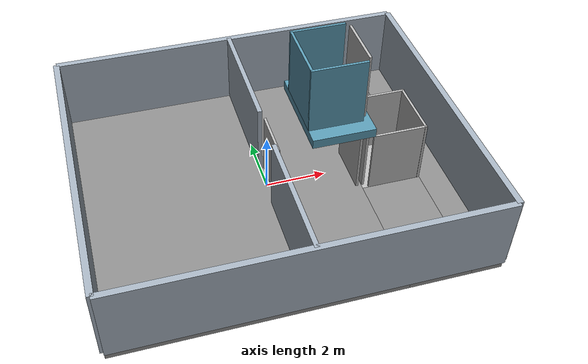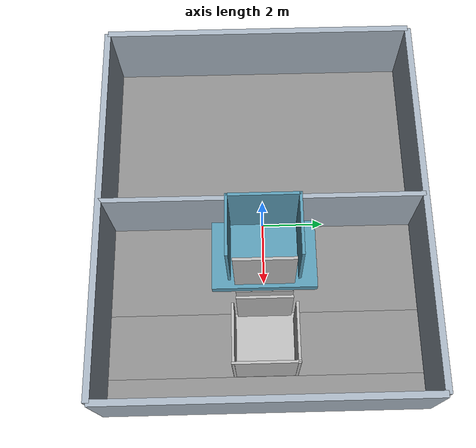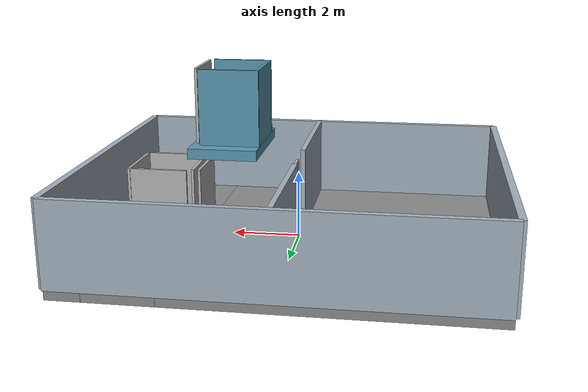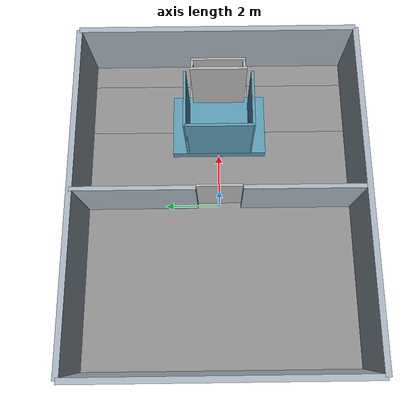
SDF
<?xml version='1.0' encoding='utf-8'?>
<sdf version="1.7">
  <world name="fleet_facility">
    <physics name="physics" type="ode">
      <max_step_size>.002</max_step_size>
      <real_time_factor>1</real_time_factor>
    </physics>
    <gravity>0 0 -9.81</gravity>
    <plugin name="ignition::gazebo::systems::Physics" filename="ignition-gazebo-physics-system" />
    <plugin name="ignition::gazebo::systems::UserCommands" filename="ignition-gazebo-user-commands-system" />
    <plugin name="ignition::gazebo::systems::SceneBroadcaster" filename="ignition-gazebo-scene-broadcaster-system" />
    <plugin name="ignition::gazebo::systems::Sensors" filename="ignition-gazebo-sensors-system">
      <render_engine>ogre2</render_engine>
    </plugin>
    <plugin name="ignition::gazebo::systems::Imu" filename="ignition-gazebo-imu-system" />
    <light name="sun" type="directional">
      <pose>0 0 10 0 0 0</pose>
      <diffuse>.9 .9 .9 1</diffuse>
      <direction>-.3 .2 -1</direction>
    </light>
    <model name="west_floor">
      <static>true</static>
      <pose>-1.5 0 -0.15 0 0 0</pose>
      <link name="link">
        <visual name="visual">
          <geometry>
            <box>
              <size>9 10 0.3</size>
            </box>
          </geometry>
          <material>
            <ambient>.55 .55 .55 1</ambient>
            <diffuse>.55 .55 .55 1</diffuse>
          </material>
        </visual>
        <collision name="collision">
          <geometry>
            <box>
              <size>9 10 0.3</size>
            </box>
          </geometry>
        </collision>
      </link>
    </model>
    <model name="east_floor">
      <static>true</static>
      <pose>5.5 0 -0.15 0 0 0</pose>
      <link name="link">
        <visual name="visual">
          <geometry>
            <box>
              <size>1 10 0.3</size>
            </box>
          </geometry>
          <material>
            <ambient>.55 .55 .55 1</ambient>
            <diffuse>.55 .55 .55 1</diffuse>
          </material>
        </visual>
        <collision name="collision">
          <geometry>
            <box>
              <size>1 10 0.3</size>
            </box>
          </geometry>
        </collision>
      </link>
    </model>
    <model name="north_floor">
      <static>true</static>
      <pose>4 3 -0.15 0 0 0</pose>
      <link name="link">
        <visual name="visual">
          <geometry>
            <box>
              <size>2 4 0.3</size>
            </box>
          </geometry>
          <material>
            <ambient>.55 .55 .55 1</ambient>
            <diffuse>.55 .55 .55 1</diffuse>
          </material>
        </visual>
        <collision name="collision">
          <geometry>
            <box>
              <size>2 4 0.3</size>
            </box>
          </geometry>
        </collision>
      </link>
    </model>
    <model name="south_floor">
      <static>true</static>
      <pose>4 -3 -0.15 0 0 0</pose>
      <link name="link">
        <visual name="visual">
          <geometry>
            <box>
              <size>2 4 0.3</size>
            </box>
          </geometry>
          <material>
            <ambient>.55 .55 .55 1</ambient>
            <diffuse>.55 .55 .55 1</diffuse>
          </material>
        </visual>
        <collision name="collision">
          <geometry>
            <box>
              <size>2 4 0.3</size>
            </box>
          </geometry>
        </collision>
      </link>
    </model>
    <model name="wall_0">
      <static>true</static>
      <pose>-6 0 1.25 0 0 0</pose>
      <link name="link">
        <visual name="visual">
          <geometry>
            <box>
              <size>0.2 10 2.5</size>
            </box>
          </geometry>
          <material>
            <ambient>.65 .7 .75 1</ambient>
            <diffuse>.65 .7 .75 1</diffuse>
          </material>
        </visual>
        <collision name="collision">
          <geometry>
            <box>
              <size>0.2 10 2.5</size>
            </box>
          </geometry>
        </collision>
      </link>
    </model>
    <model name="wall_1">
      <static>true</static>
      <pose>6 0 1.25 0 0 0</pose>
      <link name="link">
        <visual name="visual">
          <geometry>
            <box>
              <size>0.2 10 2.5</size>
            </box>
          </geometry>
          <material>
            <ambient>.65 .7 .75 1</ambient>
            <diffuse>.65 .7 .75 1</diffuse>
          </material>
        </visual>
        <collision name="collision">
          <geometry>
            <box>
              <size>0.2 10 2.5</size>
            </box>
          </geometry>
        </collision>
      </link>
    </model>
    <model name="wall_2">
      <static>true</static>
      <pose>0 5 1.25 0 0 0</pose>
      <link name="link">
        <visual name="visual">
          <geometry>
            <box>
              <size>12 0.2 2.5</size>
            </box>
          </geometry>
          <material>
            <ambient>.65 .7 .75 1</ambient>
            <diffuse>.65 .7 .75 1</diffuse>
          </material>
        </visual>
        <collision name="collision">
          <geometry>
            <box>
              <size>12 0.2 2.5</size>
            </box>
          </geometry>
        </collision>
      </link>
    </model>
    <model name="wall_3">
      <static>true</static>
      <pose>0 -5 1.25 0 0 0</pose>
      <link name="link">
        <visual name="visual">
          <geometry>
            <box>
              <size>12 0.2 2.5</size>
            </box>
          </geometry>
          <material>
            <ambient>.65 .7 .75 1</ambient>
            <diffuse>.65 .7 .75 1</diffuse>
          </material>
        </visual>
        <collision name="collision">
          <geometry>
            <box>
              <size>12 0.2 2.5</size>
            </box>
          </geometry>
        </collision>
      </link>
    </model>
    <model name="wall_4">
      <static>true</static>
      <pose>0 -2.9 1.25 0 0 0</pose>
      <link name="link">
        <visual name="visual">
          <geometry>
            <box>
              <size>0.15 4.2 2.5</size>
            </box>
          </geometry>
          <material>
            <ambient>.65 .7 .75 1</ambient>
            <diffuse>.65 .7 .75 1</diffuse>
          </material>
        </visual>
        <collision name="collision">
          <geometry>
            <box>
              <size>0.15 4.2 2.5</size>
            </box>
          </geometry>
        </collision>
      </link>
    </model>
    <model name="wall_5">
      <static>true</static>
      <pose>0 2.9 1.25 0 0 0</pose>
      <link name="link">
        <visual name="visual">
          <geometry>
            <box>
              <size>0.15 4.2 2.5</size>
            </box>
          </geometry>
          <material>
            <ambient>.65 .7 .75 1</ambient>
            <diffuse>.65 .7 .75 1</diffuse>
          </material>
        </visual>
        <collision name="collision">
          <geometry>
            <box>
              <size>0.15 4.2 2.5</size>
            </box>
          </geometry>
        </collision>
      </link>
    </model>
    <model name="upper_landing">
      <static>true</static>
      <pose>2 0 2.85 0 0 0</pose>
      <link name="link">
        <visual name="visual">
          <geometry>
            <box>
              <size>2 3 0.3</size>
            </box>
          </geometry>
          <material>
            <ambient>.35 .6 .7 1</ambient>
            <diffuse>.35 .6 .7 1</diffuse>
          </material>
        </visual>
        <collision name="collision">
          <geometry>
            <box>
              <size>2 3 0.3</size>
            </box>
          </geometry>
        </collision>
      </link>
    </model>
    <model name="landing_west_rail">
      <static>true</static>
      <pose>1.04 0 4.1 0 0 0</pose>
      <link name="link">
        <visual name="visual">
          <geometry>
            <box>
              <size>0.08 2.0 2.2</size>
            </box>
          </geometry>
          <material>
            <ambient>.35 .6 .7 1</ambient>
            <diffuse>.35 .6 .7 1</diffuse>
          </material>
        </visual>
        <collision name="collision">
          <geometry>
            <box>
              <size>0.08 2.0 2.2</size>
            </box>
          </geometry>
        </collision>
      </link>
    </model>
    <model name="landing_north_rail">
      <static>true</static>
      <pose>1.875 1.0 4.1 0 0 0</pose>
      <link name="link">
        <visual name="visual">
          <geometry>
            <box>
              <size>1.75 0.08 2.2</size>
            </box>
          </geometry>
          <material>
            <ambient>.35 .6 .7 1</ambient>
            <diffuse>.35 .6 .7 1</diffuse>
          </material>
        </visual>
        <collision name="collision">
          <geometry>
            <box>
              <size>1.75 0.08 2.2</size>
            </box>
          </geometry>
        </collision>
      </link>
    </model>
    <model name="landing_south_rail">
      <static>true</static>
      <pose>1.875 -1.0 4.1 0 0 0</pose>
      <link name="link">
        <visual name="visual">
          <geometry>
            <box>
              <size>1.75 0.08 2.2</size>
            </box>
          </geometry>
          <material>
            <ambient>.35 .6 .7 1</ambient>
            <diffuse>.35 .6 .7 1</diffuse>
          </material>
        </visual>
        <collision name="collision">
          <geometry>
            <box>
              <size>1.75 0.08 2.2</size>
            </box>
          </geometry>
        </collision>
      </link>
    </model>
    <model name="facility">
      <static>false</static>
      <link name="anchor">
        <inertial>
          <mass>1</mass>
          <inertia />
        </inertial>
      </link>
      <joint name="anchor_fixed" type="fixed">
        <parent>world</parent>
        <child>anchor</child>
      </joint>
      <link name="main_door">
        <pose>0.16 0 1.1 0 0 0</pose>
        <inertial>
          <mass>12.0</mass>
          <inertia>
            <ixx>7.400000000000001</ixx>
            <iyy>4.846400000000001</iyy>
            <izz>2.5664000000000007</izz>
          </inertia>
        </inertial>
        <collision name="main_door_collision">
          <pose>0 0 .005 0 0 0</pose>
          <geometry>
            <box>
              <size>0.08 1.6 2.1900000000000004</size>
            </box>
          </geometry>
        </collision>
        <visual name="main_door_visual">
          <pose>0 0 .005 0 0 0</pose>
          <geometry>
            <box>
              <size>0.08 1.6 2.1900000000000004</size>
            </box>
          </geometry>
        </visual>
      </link>
      <joint name="door_main" type="prismatic">
        <parent>anchor</parent>
        <child>main_door</child>
        <axis>
          <xyz>0 1 0</xyz>
          <limit>
            <lower>0</lower>
            <upper>1.8</upper>
            <effort>300.0</effort>
            <velocity>0.25</velocity>
          </limit>
        </axis>
      </joint>
      <plugin name="ignition::gazebo::systems::JointPositionController" filename="ignition-gazebo-joint-position-controller-system">
        <joint_name>door_main</joint_name>
        <topic>/facility/door_main/target</topic>
        <p_gain>300.0</p_gain>
        <d_gain>80.0</d_gain>
        <i_gain>20</i_gain>
        <i_min>-8</i_min>
        <i_max>8</i_max>
        <cmd_offset>0.0</cmd_offset>
        <cmd_min>-300.0</cmd_min>
        <cmd_max>300.0</cmd_max>
        <use_velocity_commands>false</use_velocity_commands>
        <initial_position>0</initial_position>
      </plugin>
      <link name="lift_door">
        <pose>3.05 0 1.1 0 0 0</pose>
        <inertial>
          <mass>15.0</mass>
          <inertia>
            <ixx>9.6625</ixx>
            <iyy>6.058000000000001</iyy>
            <izz>3.6205</izz>
          </inertia>
        </inertial>
        <collision name="lift_door_collision">
          <pose>0 0 .005 0 0 0</pose>
          <geometry>
            <box>
              <size>0.08 1.7 2.1900000000000004</size>
            </box>
          </geometry>
        </collision>
        <visual name="lift_door_visual">
          <pose>0 0 .005 0 0 0</pose>
          <geometry>
            <box>
              <size>0.08 1.7 2.1900000000000004</size>
            </box>
          </geometry>
        </visual>
      </link>
      <joint name="door_lift" type="prismatic">
        <parent>lift_platform</parent>
        <child>lift_door</child>
        <axis>
          <xyz>0 1 0</xyz>
          <limit>
            <lower>0</lower>
            <upper>2.2</upper>
            <effort>300.0</effort>
            <velocity>0.25</velocity>
          </limit>
        </axis>
      </joint>
      <plugin name="ignition::gazebo::systems::JointPositionController" filename="ignition-gazebo-joint-position-controller-system">
        <joint_name>door_lift</joint_name>
        <topic>/facility/door_lift/target</topic>
        <p_gain>1200.0</p_gain>
        <d_gain>80.0</d_gain>
        <i_gain>20</i_gain>
        <i_min>-8</i_min>
        <i_max>8</i_max>
        <cmd_offset>0.0</cmd_offset>
        <cmd_min>-300.0</cmd_min>
        <cmd_max>300.0</cmd_max>
        <use_velocity_commands>false</use_velocity_commands>
        <initial_position>0</initial_position>
      </plugin>
      <link name="lower_gate">
        <pose>2.85 0 1.1 0 0 0</pose>
        <inertial>
          <mass>15.0</mass>
          <inertia>
            <ixx>9.6625</ixx>
            <iyy>6.058000000000001</iyy>
            <izz>3.6205</izz>
          </inertia>
        </inertial>
        <collision name="lower_gate_collision">
          <pose>0 0 .005 0 0 0</pose>
          <geometry>
            <box>
              <size>0.08 1.7 2.1900000000000004</size>
            </box>
          </geometry>
        </collision>
        <visual name="lower_gate_visual">
          <pose>0 0 .005 0 0 0</pose>
          <geometry>
            <box>
              <size>0.08 1.7 2.1900000000000004</size>
            </box>
          </geometry>
        </visual>
      </link>
      <joint name="landing_L0" type="prismatic">
        <parent>anchor</parent>
        <child>lower_gate</child>
        <axis>
          <xyz>0 1 0</xyz>
          <limit>
            <lower>0</lower>
            <upper>2.2</upper>
            <effort>300.0</effort>
            <velocity>0.25</velocity>
          </limit>
        </axis>
      </joint>
      <plugin name="ignition::gazebo::systems::JointPositionController" filename="ignition-gazebo-joint-position-controller-system">
        <joint_name>landing_L0</joint_name>
        <topic>/facility/landing_L0/target</topic>
        <p_gain>1200.0</p_gain>
        <d_gain>80.0</d_gain>
        <i_gain>20</i_gain>
        <i_min>-8</i_min>
        <i_max>8</i_max>
        <cmd_offset>0.0</cmd_offset>
        <cmd_min>-300.0</cmd_min>
        <cmd_max>300.0</cmd_max>
        <use_velocity_commands>false</use_velocity_commands>
        <initial_position>0</initial_position>
      </plugin>
      <link name="upper_gate">
        <pose>2.85 0 4.1 0 0 0</pose>
        <inertial>
          <mass>15.0</mass>
          <inertia>
            <ixx>9.6625</ixx>
            <iyy>6.058000000000001</iyy>
            <izz>3.6205</izz>
          </inertia>
        </inertial>
        <collision name="upper_gate_collision">
          <pose>0 0 .005 0 0 0</pose>
          <geometry>
            <box>
              <size>0.08 1.7 2.1900000000000004</size>
            </box>
          </geometry>
        </collision>
        <visual name="upper_gate_visual">
          <pose>0 0 .005 0 0 0</pose>
          <geometry>
            <box>
              <size>0.08 1.7 2.1900000000000004</size>
            </box>
          </geometry>
        </visual>
      </link>
      <joint name="landing_L1" type="prismatic">
        <parent>anchor</parent>
        <child>upper_gate</child>
        <axis>
          <xyz>0 1 0</xyz>
          <limit>
            <lower>0</lower>
            <upper>2.2</upper>
            <effort>300.0</effort>
            <velocity>0.25</velocity>
          </limit>
        </axis>
      </joint>
      <plugin name="ignition::gazebo::systems::JointPositionController" filename="ignition-gazebo-joint-position-controller-system">
        <joint_name>landing_L1</joint_name>
        <topic>/facility/landing_L1/target</topic>
        <p_gain>1200.0</p_gain>
        <d_gain>80.0</d_gain>
        <i_gain>20</i_gain>
        <i_min>-8</i_min>
        <i_max>8</i_max>
        <cmd_offset>0.0</cmd_offset>
        <cmd_min>-300.0</cmd_min>
        <cmd_max>300.0</cmd_max>
        <use_velocity_commands>false</use_velocity_commands>
        <initial_position>0</initial_position>
      </plugin>
      <link name="lift_platform">
        <pose>4 0 -0.05 0 0 0</pose>
        <inertial>
          <mass>50.0</mass>
          <inertia>
            <ixx>16.708333333333332</ixx>
            <iyy>16.708333333333332</iyy>
            <izz>33.333333333333336</izz>
          </inertia>
        </inertial>
        <collision name="lift_platform_collision">
          <geometry>
            <box>
              <size>2 2 0.1</size>
            </box>
          </geometry>
        </collision>
        <visual name="lift_platform_visual">
          <geometry>
            <box>
              <size>2 2 0.1</size>
            </box>
          </geometry>
        </visual>
        <collision name="car_wall_0_collision">
          <pose>0.95 0 1.15 0 0 0</pose>
          <geometry>
            <box>
              <size>0.08 2.0 2.2</size>
            </box>
          </geometry>
        </collision>
        <visual name="car_wall_0_visual">
          <pose>0.95 0 1.15 0 0 0</pose>
          <geometry>
            <box>
              <size>0.08 2.0 2.2</size>
            </box>
          </geometry>
        </visual>
        <collision name="car_wall_1_collision">
          <pose>0.1 0.95 1.15 0 0 0</pose>
          <geometry>
            <box>
              <size>1.8 0.08 2.2</size>
            </box>
          </geometry>
        </collision>
        <visual name="car_wall_1_visual">
          <pose>0.1 0.95 1.15 0 0 0</pose>
          <geometry>
            <box>
              <size>1.8 0.08 2.2</size>
            </box>
          </geometry>
        </visual>
        <collision name="car_wall_2_collision">
          <pose>0.1 -0.95 1.15 0 0 0</pose>
          <geometry>
            <box>
              <size>1.8 0.08 2.2</size>
            </box>
          </geometry>
        </collision>
        <visual name="car_wall_2_visual">
          <pose>0.1 -0.95 1.15 0 0 0</pose>
          <geometry>
            <box>
              <size>1.8 0.08 2.2</size>
            </box>
          </geometry>
        </visual>
      </link>
      <joint name="lift_car" type="prismatic">
        <parent>anchor</parent>
        <child>lift_platform</child>
        <axis>
          <xyz>0 0 1</xyz>
          <limit>
            <lower>0</lower>
            <upper>3.0</upper>
            <effort>1600.0</effort>
            <velocity>0.25</velocity>
          </limit>
        </axis>
      </joint>
      <plugin name="ignition::gazebo::systems::JointPositionController" filename="ignition-gazebo-joint-position-controller-system">
        <joint_name>lift_car</joint_name>
        <topic>/facility/lift_car/target</topic>
        <p_gain>40000.0</p_gain>
        <d_gain>3000.0</d_gain>
        <i_gain>1000</i_gain>
        <i_min>-800</i_min>
        <i_max>800</i_max>
        <cmd_offset>637.65</cmd_offset>
        <cmd_min>-1600.0</cmd_min>
        <cmd_max>1600.0</cmd_max>
        <use_velocity_commands>false</use_velocity_commands>
        <initial_position>0</initial_position>
      </plugin>
      <plugin name="ignition::gazebo::systems::JointStatePublisher" filename="ignition-gazebo-joint-state-publisher-system">
        <topic>/facility/joint_states</topic>
      </plugin>
    </model>
  </world>
</sdf>
